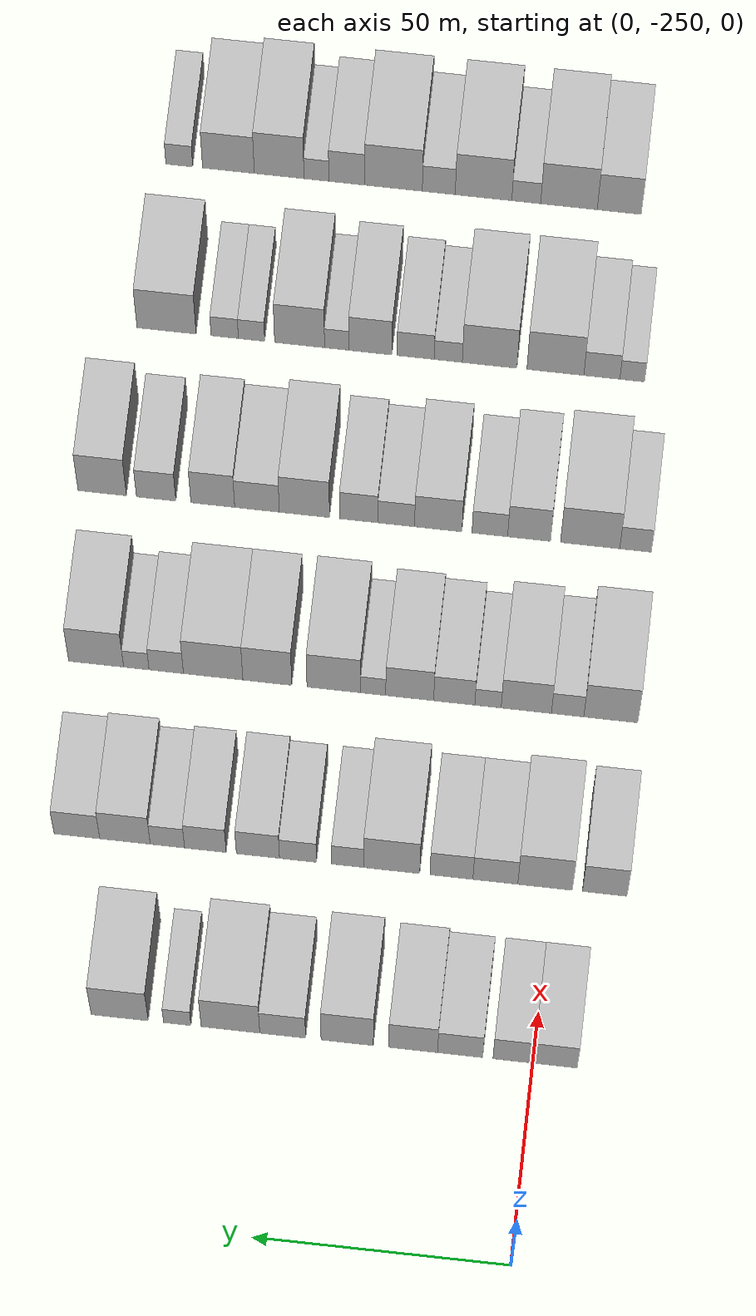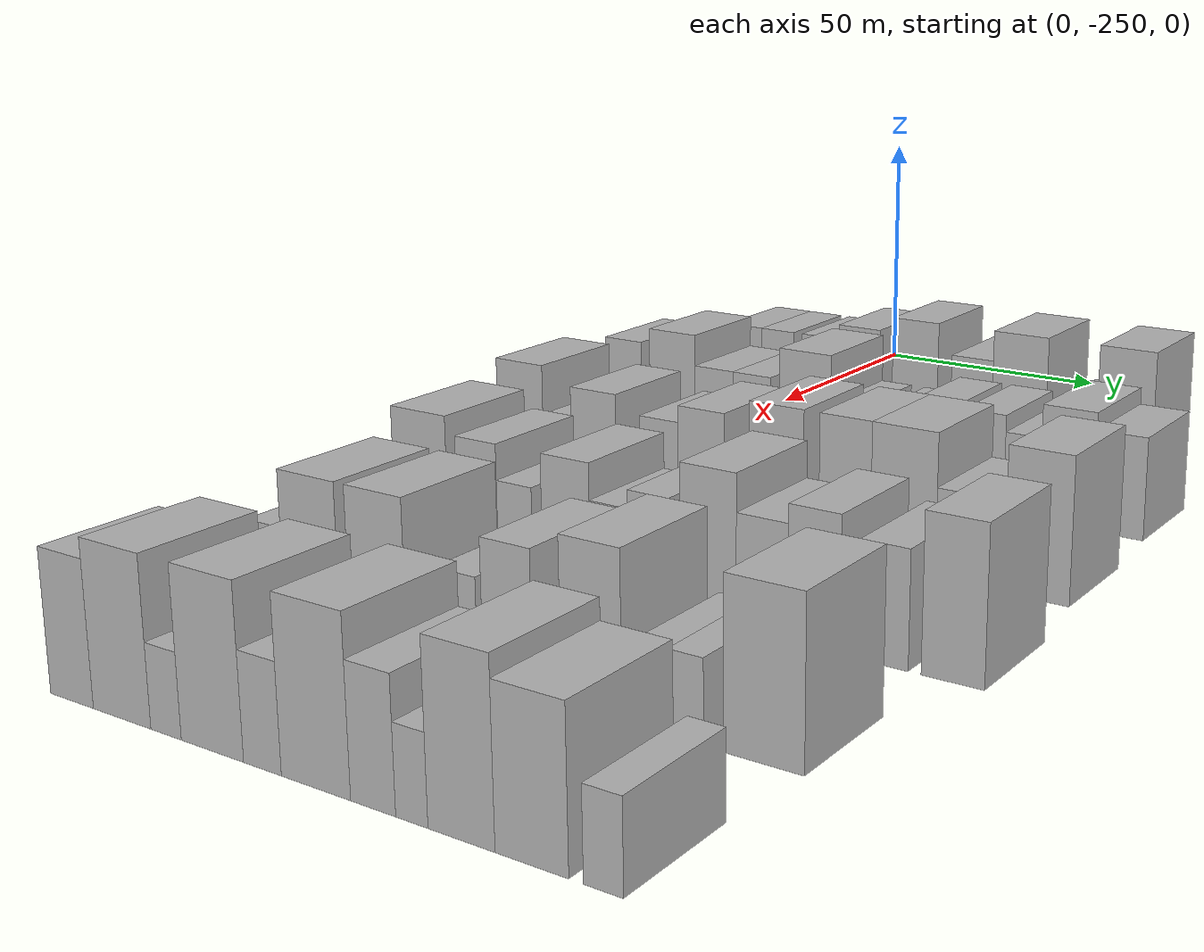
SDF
<sdf version="1.6">
 <world name="default">
  <model name="building_38">
   <static>1</static>
   <pose>50.0000 -254.2759 0 0.000000 0.000000 0.000000</pose>
   <link name="link">
    <pose>0 0 9.00 0 0 0</pose>
    <collision name="collision"><geometry><box><size>20.0000 8.5473 18.0000</size></box></geometry></collision>
    <visual name="visual">
     <cast_shadows>0</cast_shadows>
     <geometry><box><size>20.0000 8.5473 18.0000</size></box></geometry>
     <material>
      <script>
       <uri>model://HANNAS_wall/materials/scripts</uri>
       <uri>model://HANNAS_wall/materials/textures</uri>
       <name>vrc/HANNAS_wall</name>
      </script>
     </material>
    </visual>
   </link>
  </model>
  <model name="building_39">
   <static>1</static>
   <pose>50.0000 -246.0966 0 0.000000 0.000000 0.000000</pose>
   <link name="link">
    <pose>0 0 9.00 0 0 0</pose>
    <collision name="collision"><geometry><box><size>20.0000 7.8114 18.0000</size></box></geometry></collision>
    <visual name="visual">
     <cast_shadows>0</cast_shadows>
     <geometry><box><size>20.0000 7.8114 18.0000</size></box></geometry>
     <material>
      <script>
       <uri>model://HANNAS_wall/materials/scripts</uri>
       <uri>model://HANNAS_wall/materials/textures</uri>
       <name>vrc/HANNAS_wall</name>
      </script>
     </material>
    </visual>
   </link>
  </model>
  <model name="building_40">
   <static>1</static>
   <pose>50.0000 -235.7969 0 0.000000 0.000000 0.000000</pose>
   <link name="link">
    <pose>0 0 9.00 0 0 0</pose>
    <collision name="collision"><geometry><box><size>20.0000 8.7880 18.0000</size></box></geometry></collision>
    <visual name="visual">
     <cast_shadows>0</cast_shadows>
     <geometry><box><size>20.0000 8.7880 18.0000</size></box></geometry>
     <material>
      <script>
       <uri>model://HANNAS_wall/materials/scripts</uri>
       <uri>model://HANNAS_wall/materials/textures</uri>
       <name>vrc/HANNAS_wall</name>
      </script>
     </material>
    </visual>
   </link>
  </model>
  <model name="building_41">
   <static>1</static>
   <pose>50.0000 -226.6547 0 0.000000 0.000000 0.000000</pose>
   <link name="link">
    <pose>0 0 10.50 0 0 0</pose>
    <collision name="collision"><geometry><box><size>20.0000 9.4963 21.0000</size></box></geometry></collision>
    <visual name="visual">
     <cast_shadows>0</cast_shadows>
     <geometry><box><size>20.0000 9.4963 21.0000</size></box></geometry>
     <material>
      <script>
       <uri>model://HANNAS_wall/materials/scripts</uri>
       <uri>model://HANNAS_wall/materials/textures</uri>
       <name>vrc/HANNAS_wall</name>
      </script>
     </material>
    </visual>
   </link>
  </model>
  <model name="building_42">
   <static>1</static>
   <pose>50.0000 -213.8169 0 0.000000 0.000000 0.000000</pose>
   <link name="link">
    <pose>0 0 12.00 0 0 0</pose>
    <collision name="collision"><geometry><box><size>20.0000 10.1794 24.0000</size></box></geometry></collision>
    <visual name="visual">
     <cast_shadows>0</cast_shadows>
     <geometry><box><size>20.0000 10.1794 24.0000</size></box></geometry>
     <material>
      <script>
       <uri>model://HANNAS_wall/materials/scripts</uri>
       <uri>model://HANNAS_wall/materials/textures</uri>
       <name>vrc/HANNAS_wall</name>
      </script>
     </material>
    </visual>
   </link>
  </model>
  <model name="building_43">
   <static>1</static>
   <pose>50.0000 -201.2609 0 0.000000 0.000000 0.000000</pose>
   <link name="link">
    <pose>0 0 9.00 0 0 0</pose>
    <collision name="collision"><geometry><box><size>20.0000 8.9326 18.0000</size></box></geometry></collision>
    <visual name="visual">
     <cast_shadows>0</cast_shadows>
     <geometry><box><size>20.0000 8.9326 18.0000</size></box></geometry>
     <material>
      <script>
       <uri>model://HANNAS_wall/materials/scripts</uri>
       <uri>model://HANNAS_wall/materials/textures</uri>
       <name>vrc/HANNAS_wall</name>
      </script>
     </material>
    </visual>
   </link>
  </model>
  <model name="building_44">
   <static>1</static>
   <pose>50.0000 -191.0896 0 0.000000 0.000000 0.000000</pose>
   <link name="link">
    <pose>0 0 12.00 0 0 0</pose>
    <collision name="collision"><geometry><box><size>20.0000 11.4100 24.0000</size></box></geometry></collision>
    <visual name="visual">
     <cast_shadows>0</cast_shadows>
     <geometry><box><size>20.0000 11.4100 24.0000</size></box></geometry>
     <material>
      <script>
       <uri>model://HANNAS_wall/materials/scripts</uri>
       <uri>model://HANNAS_wall/materials/textures</uri>
       <name>vrc/HANNAS_wall</name>
      </script>
     </material>
    </visual>
   </link>
  </model>
  <model name="building_45">
   <static>1</static>
   <pose>50.0000 -180.7207 0 0.000000 0.000000 0.000000</pose>
   <link name="link">
    <pose>0 0 6.00 0 0 0</pose>
    <collision name="collision"><geometry><box><size>20.0000 5.3279 12.0000</size></box></geometry></collision>
    <visual name="visual">
     <cast_shadows>0</cast_shadows>
     <geometry><box><size>20.0000 5.3279 12.0000</size></box></geometry>
     <material>
      <script>
       <uri>model://HANNAS_wall/materials/scripts</uri>
       <uri>model://HANNAS_wall/materials/textures</uri>
       <name>vrc/HANNAS_wall</name>
      </script>
     </material>
    </visual>
   </link>
  </model>
  <model name="building_46">
   <static>1</static>
   <pose>50.0000 -169.4940 0 0.000000 0.000000 0.000000</pose>
   <link name="link">
    <pose>0 0 12.00 0 0 0</pose>
    <collision name="collision"><geometry><box><size>20.0000 11.1255 24.0000</size></box></geometry></collision>
    <visual name="visual">
     <cast_shadows>0</cast_shadows>
     <geometry><box><size>20.0000 11.1255 24.0000</size></box></geometry>
     <material>
      <script>
       <uri>model://HANNAS_wall/materials/scripts</uri>
       <uri>model://HANNAS_wall/materials/textures</uri>
       <name>vrc/HANNAS_wall</name>
      </script>
     </material>
    </visual>
   </link>
  </model>
  <model name="building_152">
   <static>1</static>
   <pose>85.0000 -260.3451 0 0.000000 0.000000 0.000000</pose>
   <link name="link">
    <pose>0 0 10.50 0 0 0</pose>
    <collision name="collision"><geometry><box><size>20.0000 8.6843 21.0000</size></box></geometry></collision>
    <visual name="visual">
     <cast_shadows>0</cast_shadows>
     <geometry><box><size>20.0000 8.6843 21.0000</size></box></geometry>
     <material>
      <script>
       <uri>model://HANNAS_wall/materials/scripts</uri>
       <uri>model://HANNAS_wall/materials/textures</uri>
       <name>vrc/HANNAS_wall</name>
      </script>
     </material>
    </visual>
   </link>
  </model>
  <model name="building_153">
   <static>1</static>
   <pose>85.0000 -248.6635 0 0.000000 0.000000 0.000000</pose>
   <link name="link">
    <pose>0 0 12.00 0 0 0</pose>
    <collision name="collision"><geometry><box><size>20.0000 10.6789 24.0000</size></box></geometry></collision>
    <visual name="visual">
     <cast_shadows>0</cast_shadows>
     <geometry><box><size>20.0000 10.6789 24.0000</size></box></geometry>
     <material>
      <script>
       <uri>model://HANNAS_wall/materials/scripts</uri>
       <uri>model://HANNAS_wall/materials/textures</uri>
       <name>vrc/HANNAS_wall</name>
      </script>
     </material>
    </visual>
   </link>
  </model>
  <model name="building_154">
   <static>1</static>
   <pose>85.0000 -238.9257 0 0.000000 0.000000 0.000000</pose>
   <link name="link">
    <pose>0 0 9.00 0 0 0</pose>
    <collision name="collision"><geometry><box><size>20.0000 8.7967 18.0000</size></box></geometry></collision>
    <visual name="visual">
     <cast_shadows>0</cast_shadows>
     <geometry><box><size>20.0000 8.7967 18.0000</size></box></geometry>
     <material>
      <script>
       <uri>model://HANNAS_wall/materials/scripts</uri>
       <uri>model://HANNAS_wall/materials/textures</uri>
       <name>vrc/HANNAS_wall</name>
      </script>
     </material>
    </visual>
   </link>
  </model>
  <model name="building_155">
   <static>1</static>
   <pose>85.0000 -230.3181 0 0.000000 0.000000 0.000000</pose>
   <link name="link">
    <pose>0 0 9.00 0 0 0</pose>
    <collision name="collision"><geometry><box><size>20.0000 8.4185 18.0000</size></box></geometry></collision>
    <visual name="visual">
     <cast_shadows>0</cast_shadows>
     <geometry><box><size>20.0000 8.4185 18.0000</size></box></geometry>
     <material>
      <script>
       <uri>model://HANNAS_wall/materials/scripts</uri>
       <uri>model://HANNAS_wall/materials/textures</uri>
       <name>vrc/HANNAS_wall</name>
      </script>
     </material>
    </visual>
   </link>
  </model>
  <model name="building_156">
   <static>1</static>
   <pose>85.0000 -218.6136 0 0.000000 0.000000 0.000000</pose>
   <link name="link">
    <pose>0 0 12.00 0 0 0</pose>
    <collision name="collision"><geometry><box><size>20.0000 10.9906 24.0000</size></box></geometry></collision>
    <visual name="visual">
     <cast_shadows>0</cast_shadows>
     <geometry><box><size>20.0000 10.9906 24.0000</size></box></geometry>
     <material>
      <script>
       <uri>model://HANNAS_wall/materials/scripts</uri>
       <uri>model://HANNAS_wall/materials/textures</uri>
       <name>vrc/HANNAS_wall</name>
      </script>
     </material>
    </visual>
   </link>
  </model>
  <model name="building_157">
   <static>1</static>
   <pose>85.0000 -209.9815 0 0.000000 0.000000 0.000000</pose>
   <link name="link">
    <pose>0 0 7.50 0 0 0</pose>
    <collision name="collision"><geometry><box><size>20.0000 6.2735 15.0000</size></box></geometry></collision>
    <visual name="visual">
     <cast_shadows>0</cast_shadows>
     <geometry><box><size>20.0000 6.2735 15.0000</size></box></geometry>
     <material>
      <script>
       <uri>model://HANNAS_wall/materials/scripts</uri>
       <uri>model://HANNAS_wall/materials/textures</uri>
       <name>vrc/HANNAS_wall</name>
      </script>
     </material>
    </visual>
   </link>
  </model>
  <model name="building_158">
   <static>1</static>
   <pose>85.0000 -200.2164 0 0.000000 0.000000 0.000000</pose>
   <link name="link">
    <pose>0 0 7.50 0 0 0</pose>
    <collision name="collision"><geometry><box><size>20.0000 7.2566 15.0000</size></box></geometry></collision>
    <visual name="visual">
     <cast_shadows>0</cast_shadows>
     <geometry><box><size>20.0000 7.2566 15.0000</size></box></geometry>
     <material>
      <script>
       <uri>model://HANNAS_wall/materials/scripts</uri>
       <uri>model://HANNAS_wall/materials/textures</uri>
       <name>vrc/HANNAS_wall</name>
      </script>
     </material>
    </visual>
   </link>
  </model>
  <model name="building_159">
   <static>1</static>
   <pose>85.0000 -192.3553 0 0.000000 0.000000 0.000000</pose>
   <link name="link">
    <pose>0 0 9.00 0 0 0</pose>
    <collision name="collision"><geometry><box><size>20.0000 8.4656 18.0000</size></box></geometry></collision>
    <visual name="visual">
     <cast_shadows>0</cast_shadows>
     <geometry><box><size>20.0000 8.4656 18.0000</size></box></geometry>
     <material>
      <script>
       <uri>model://HANNAS_wall/materials/scripts</uri>
       <uri>model://HANNAS_wall/materials/textures</uri>
       <name>vrc/HANNAS_wall</name>
      </script>
     </material>
    </visual>
   </link>
  </model>
  <model name="building_160">
   <static>1</static>
   <pose>85.0000 -182.0341 0 0.000000 0.000000 0.000000</pose>
   <link name="link">
    <pose>0 0 9.00 0 0 0</pose>
    <collision name="collision"><geometry><box><size>20.0000 8.1768 18.0000</size></box></geometry></collision>
    <visual name="visual">
     <cast_shadows>0</cast_shadows>
     <geometry><box><size>20.0000 8.1768 18.0000</size></box></geometry>
     <material>
      <script>
       <uri>model://HANNAS_wall/materials/scripts</uri>
       <uri>model://HANNAS_wall/materials/textures</uri>
       <name>vrc/HANNAS_wall</name>
      </script>
     </material>
    </visual>
   </link>
  </model>
  <model name="building_161">
   <static>1</static>
   <pose>85.0000 -174.5738 0 0.000000 0.000000 0.000000</pose>
   <link name="link">
    <pose>0 0 7.50 0 0 0</pose>
    <collision name="collision"><geometry><box><size>20.0000 6.7437 15.0000</size></box></geometry></collision>
    <visual name="visual">
     <cast_shadows>0</cast_shadows>
     <geometry><box><size>20.0000 6.7437 15.0000</size></box></geometry>
     <material>
      <script>
       <uri>model://HANNAS_wall/materials/scripts</uri>
       <uri>model://HANNAS_wall/materials/textures</uri>
       <name>vrc/HANNAS_wall</name>
      </script>
     </material>
    </visual>
   </link>
  </model>
  <model name="building_162">
   <static>1</static>
   <pose>85.0000 -166.2309 0 0.000000 0.000000 0.000000</pose>
   <link name="link">
    <pose>0 0 10.50 0 0 0</pose>
    <collision name="collision"><geometry><box><size>20.0000 9.9423 21.0000</size></box></geometry></collision>
    <visual name="visual">
     <cast_shadows>0</cast_shadows>
     <geometry><box><size>20.0000 9.9423 21.0000</size></box></geometry>
     <material>
      <script>
       <uri>model://HANNAS_wall/materials/scripts</uri>
       <uri>model://HANNAS_wall/materials/textures</uri>
       <name>vrc/HANNAS_wall</name>
      </script>
     </material>
    </visual>
   </link>
  </model>
  <model name="building_163">
   <static>1</static>
   <pose>85.0000 -156.7769 0 0.000000 0.000000 0.000000</pose>
   <link name="link">
    <pose>0 0 9.00 0 0 0</pose>
    <collision name="collision"><geometry><box><size>20.0000 8.9656 18.0000</size></box></geometry></collision>
    <visual name="visual">
     <cast_shadows>0</cast_shadows>
     <geometry><box><size>20.0000 8.9656 18.0000</size></box></geometry>
     <material>
      <script>
       <uri>model://HANNAS_wall/materials/scripts</uri>
       <uri>model://HANNAS_wall/materials/textures</uri>
       <name>vrc/HANNAS_wall</name>
      </script>
     </material>
    </visual>
   </link>
  </model>
  <model name="building_283">
   <static>1</static>
   <pose>120.0000 -257.9569 0 0.000000 0.000000 0.000000</pose>
   <link name="link">
    <pose>0 0 12.00 0 0 0</pose>
    <collision name="collision"><geometry><box><size>20.0000 10.6212 24.0000</size></box></geometry></collision>
    <visual name="visual">
     <cast_shadows>0</cast_shadows>
     <geometry><box><size>20.0000 10.6212 24.0000</size></box></geometry>
     <material>
      <script>
       <uri>model://HANNAS_wall/materials/scripts</uri>
       <uri>model://HANNAS_wall/materials/textures</uri>
       <name>vrc/HANNAS_wall</name>
      </script>
     </material>
    </visual>
   </link>
  </model>
  <model name="building_284">
   <static>1</static>
   <pose>120.0000 -249.4541 0 0.000000 0.000000 0.000000</pose>
   <link name="link">
    <pose>0 0 7.50 0 0 0</pose>
    <collision name="collision"><geometry><box><size>20.0000 6.3844 15.0000</size></box></geometry></collision>
    <visual name="visual">
     <cast_shadows>0</cast_shadows>
     <geometry><box><size>20.0000 6.3844 15.0000</size></box></geometry>
     <material>
      <script>
       <uri>model://HANNAS_wall/materials/scripts</uri>
       <uri>model://HANNAS_wall/materials/textures</uri>
       <name>vrc/HANNAS_wall</name>
      </script>
     </material>
    </visual>
   </link>
  </model>
  <model name="building_285">
   <static>1</static>
   <pose>120.0000 -241.2996 0 0.000000 0.000000 0.000000</pose>
   <link name="link">
    <pose>0 0 10.50 0 0 0</pose>
    <collision name="collision"><geometry><box><size>20.0000 9.9246 21.0000</size></box></geometry></collision>
    <visual name="visual">
     <cast_shadows>0</cast_shadows>
     <geometry><box><size>20.0000 9.9246 21.0000</size></box></geometry>
     <material>
      <script>
       <uri>model://HANNAS_wall/materials/scripts</uri>
       <uri>model://HANNAS_wall/materials/textures</uri>
       <name>vrc/HANNAS_wall</name>
      </script>
     </material>
    </visual>
   </link>
  </model>
  <model name="building_286">
   <static>1</static>
   <pose>120.0000 -233.7418 0 0.000000 0.000000 0.000000</pose>
   <link name="link">
    <pose>0 0 6.00 0 0 0</pose>
    <collision name="collision"><geometry><box><size>20.0000 5.1909 12.0000</size></box></geometry></collision>
    <visual name="visual">
     <cast_shadows>0</cast_shadows>
     <geometry><box><size>20.0000 5.1909 12.0000</size></box></geometry>
     <material>
      <script>
       <uri>model://HANNAS_wall/materials/scripts</uri>
       <uri>model://HANNAS_wall/materials/textures</uri>
       <name>vrc/HANNAS_wall</name>
      </script>
     </material>
    </visual>
   </link>
  </model>
  <model name="building_287">
   <static>1</static>
   <pose>120.0000 -227.0814 0 0.000000 0.000000 0.000000</pose>
   <link name="link">
    <pose>0 0 9.00 0 0 0</pose>
    <collision name="collision"><geometry><box><size>20.0000 8.1298 18.0000</size></box></geometry></collision>
    <visual name="visual">
     <cast_shadows>0</cast_shadows>
     <geometry><box><size>20.0000 8.1298 18.0000</size></box></geometry>
     <material>
      <script>
       <uri>model://HANNAS_wall/materials/scripts</uri>
       <uri>model://HANNAS_wall/materials/textures</uri>
       <name>vrc/HANNAS_wall</name>
      </script>
     </material>
    </visual>
   </link>
  </model>
  <model name="building_288">
   <static>1</static>
   <pose>120.0000 -218.2768 0 0.000000 0.000000 0.000000</pose>
   <link name="link">
    <pose>0 0 10.50 0 0 0</pose>
    <collision name="collision"><geometry><box><size>20.0000 9.4794 21.0000</size></box></geometry></collision>
    <visual name="visual">
     <cast_shadows>0</cast_shadows>
     <geometry><box><size>20.0000 9.4794 21.0000</size></box></geometry>
     <material>
      <script>
       <uri>model://HANNAS_wall/materials/scripts</uri>
       <uri>model://HANNAS_wall/materials/textures</uri>
       <name>vrc/HANNAS_wall</name>
      </script>
     </material>
    </visual>
   </link>
  </model>
  <model name="building_289">
   <static>1</static>
   <pose>120.0000 -211.0689 0 0.000000 0.000000 0.000000</pose>
   <link name="link">
    <pose>0 0 6.00 0 0 0</pose>
    <collision name="collision"><geometry><box><size>20.0000 4.9363 12.0000</size></box></geometry></collision>
    <visual name="visual">
     <cast_shadows>0</cast_shadows>
     <geometry><box><size>20.0000 4.9363 12.0000</size></box></geometry>
     <material>
      <script>
       <uri>model://HANNAS_wall/materials/scripts</uri>
       <uri>model://HANNAS_wall/materials/textures</uri>
       <name>vrc/HANNAS_wall</name>
      </script>
     </material>
    </visual>
   </link>
  </model>
  <model name="building_290">
   <static>1</static>
   <pose>120.0000 -203.2916 0 0.000000 0.000000 0.000000</pose>
   <link name="link">
    <pose>0 0 12.00 0 0 0</pose>
    <collision name="collision"><geometry><box><size>20.0000 10.6183 24.0000</size></box></geometry></collision>
    <visual name="visual">
     <cast_shadows>0</cast_shadows>
     <geometry><box><size>20.0000 10.6183 24.0000</size></box></geometry>
     <material>
      <script>
       <uri>model://HANNAS_wall/materials/scripts</uri>
       <uri>model://HANNAS_wall/materials/textures</uri>
       <name>vrc/HANNAS_wall</name>
      </script>
     </material>
    </visual>
   </link>
  </model>
  <model name="building_291">
   <static>1</static>
   <pose>120.0000 -190.1399 0 0.000000 0.000000 0.000000</pose>
   <link name="link">
    <pose>0 0 12.00 0 0 0</pose>
    <collision name="collision"><geometry><box><size>20.0000 9.6853 24.0000</size></box></geometry></collision>
    <visual name="visual">
     <cast_shadows>0</cast_shadows>
     <geometry><box><size>20.0000 9.6853 24.0000</size></box></geometry>
     <material>
      <script>
       <uri>model://HANNAS_wall/materials/scripts</uri>
       <uri>model://HANNAS_wall/materials/textures</uri>
       <name>vrc/HANNAS_wall</name>
      </script>
     </material>
    </visual>
   </link>
  </model>
  <model name="building_292">
   <static>1</static>
   <pose>120.0000 -179.4175 0 0.000000 0.000000 0.000000</pose>
   <link name="link">
    <pose>0 0 12.00 0 0 0</pose>
    <collision name="collision"><geometry><box><size>20.0000 11.7595 24.0000</size></box></geometry></collision>
    <visual name="visual">
     <cast_shadows>0</cast_shadows>
     <geometry><box><size>20.0000 11.7595 24.0000</size></box></geometry>
     <material>
      <script>
       <uri>model://HANNAS_wall/materials/scripts</uri>
       <uri>model://HANNAS_wall/materials/textures</uri>
       <name>vrc/HANNAS_wall</name>
      </script>
     </material>
    </visual>
   </link>
  </model>
  <model name="building_293">
   <static>1</static>
   <pose>120.0000 -170.1324 0 0.000000 0.000000 0.000000</pose>
   <link name="link">
    <pose>0 0 7.50 0 0 0</pose>
    <collision name="collision"><geometry><box><size>20.0000 6.8106 15.0000</size></box></geometry></collision>
    <visual name="visual">
     <cast_shadows>0</cast_shadows>
     <geometry><box><size>20.0000 6.8106 15.0000</size></box></geometry>
     <material>
      <script>
       <uri>model://HANNAS_wall/materials/scripts</uri>
       <uri>model://HANNAS_wall/materials/textures</uri>
       <name>vrc/HANNAS_wall</name>
      </script>
     </material>
    </visual>
   </link>
  </model>
  <model name="building_294">
   <static>1</static>
   <pose>120.0000 -164.2100 0 0.000000 0.000000 0.000000</pose>
   <link name="link">
    <pose>0 0 6.00 0 0 0</pose>
    <collision name="collision"><geometry><box><size>20.0000 5.0341 12.0000</size></box></geometry></collision>
    <visual name="visual">
     <cast_shadows>0</cast_shadows>
     <geometry><box><size>20.0000 5.0341 12.0000</size></box></geometry>
     <material>
      <script>
       <uri>model://HANNAS_wall/materials/scripts</uri>
       <uri>model://HANNAS_wall/materials/textures</uri>
       <name>vrc/HANNAS_wall</name>
      </script>
     </material>
    </visual>
   </link>
  </model>
  <model name="building_295">
   <static>1</static>
   <pose>120.0000 -156.2588 0 0.000000 0.000000 0.000000</pose>
   <link name="link">
    <pose>0 0 12.00 0 0 0</pose>
    <collision name="collision"><geometry><box><size>20.0000 10.8684 24.0000</size></box></geometry></collision>
    <visual name="visual">
     <cast_shadows>0</cast_shadows>
     <geometry><box><size>20.0000 10.8684 24.0000</size></box></geometry>
     <material>
      <script>
       <uri>model://HANNAS_wall/materials/scripts</uri>
       <uri>model://HANNAS_wall/materials/textures</uri>
       <name>vrc/HANNAS_wall</name>
      </script>
     </material>
    </visual>
   </link>
  </model>
  <model name="building_414">
   <static>1</static>
   <pose>155.0000 -259.3065 0 0.000000 0.000000 0.000000</pose>
   <link name="link">
    <pose>0 0 7.50 0 0 0</pose>
    <collision name="collision"><geometry><box><size>20.0000 6.2713 15.0000</size></box></geometry></collision>
    <visual name="visual">
     <cast_shadows>0</cast_shadows>
     <geometry><box><size>20.0000 6.2713 15.0000</size></box></geometry>
     <material>
      <script>
       <uri>model://HANNAS_wall/materials/scripts</uri>
       <uri>model://HANNAS_wall/materials/textures</uri>
       <name>vrc/HANNAS_wall</name>
      </script>
     </material>
    </visual>
   </link>
  </model>
  <model name="building_415">
   <static>1</static>
   <pose>155.0000 -250.2987 0 0.000000 0.000000 0.000000</pose>
   <link name="link">
    <pose>0 0 12.00 0 0 0</pose>
    <collision name="collision"><geometry><box><size>20.0000 11.7444 24.0000</size></box></geometry></collision>
    <visual name="visual">
     <cast_shadows>0</cast_shadows>
     <geometry><box><size>20.0000 11.7444 24.0000</size></box></geometry>
     <material>
      <script>
       <uri>model://HANNAS_wall/materials/scripts</uri>
       <uri>model://HANNAS_wall/materials/textures</uri>
       <name>vrc/HANNAS_wall</name>
      </script>
     </material>
    </visual>
   </link>
  </model>
  <model name="building_416">
   <static>1</static>
   <pose>155.0000 -238.1660 0 0.000000 0.000000 0.000000</pose>
   <link name="link">
    <pose>0 0 10.50 0 0 0</pose>
    <collision name="collision"><geometry><box><size>20.0000 8.5210 21.0000</size></box></geometry></collision>
    <visual name="visual">
     <cast_shadows>0</cast_shadows>
     <geometry><box><size>20.0000 8.5210 21.0000</size></box></geometry>
     <material>
      <script>
       <uri>model://HANNAS_wall/materials/scripts</uri>
       <uri>model://HANNAS_wall/materials/textures</uri>
       <name>vrc/HANNAS_wall</name>
      </script>
     </material>
    </visual>
   </link>
  </model>
  <model name="building_417">
   <static>1</static>
   <pose>155.0000 -230.3635 0 0.000000 0.000000 0.000000</pose>
   <link name="link">
    <pose>0 0 7.50 0 0 0</pose>
    <collision name="collision"><geometry><box><size>20.0000 7.0841 15.0000</size></box></geometry></collision>
    <visual name="visual">
     <cast_shadows>0</cast_shadows>
     <geometry><box><size>20.0000 7.0841 15.0000</size></box></geometry>
     <material>
      <script>
       <uri>model://HANNAS_wall/materials/scripts</uri>
       <uri>model://HANNAS_wall/materials/textures</uri>
       <name>vrc/HANNAS_wall</name>
      </script>
     </material>
    </visual>
   </link>
  </model>
  <model name="building_418">
   <static>1</static>
   <pose>155.0000 -220.1053 0 0.000000 0.000000 0.000000</pose>
   <link name="link">
    <pose>0 0 10.50 0 0 0</pose>
    <collision name="collision"><geometry><box><size>20.0000 9.4321 21.0000</size></box></geometry></collision>
    <visual name="visual">
     <cast_shadows>0</cast_shadows>
     <geometry><box><size>20.0000 9.4321 21.0000</size></box></geometry>
     <material>
      <script>
       <uri>model://HANNAS_wall/materials/scripts</uri>
       <uri>model://HANNAS_wall/materials/textures</uri>
       <name>vrc/HANNAS_wall</name>
      </script>
     </material>
    </visual>
   </link>
  </model>
  <model name="building_419">
   <static>1</static>
   <pose>155.0000 -211.7390 0 0.000000 0.000000 0.000000</pose>
   <link name="link">
    <pose>0 0 7.50 0 0 0</pose>
    <collision name="collision"><geometry><box><size>20.0000 7.3005 15.0000</size></box></geometry></collision>
    <visual name="visual">
     <cast_shadows>0</cast_shadows>
     <geometry><box><size>20.0000 7.3005 15.0000</size></box></geometry>
     <material>
      <script>
       <uri>model://HANNAS_wall/materials/scripts</uri>
       <uri>model://HANNAS_wall/materials/textures</uri>
       <name>vrc/HANNAS_wall</name>
      </script>
     </material>
    </visual>
   </link>
  </model>
  <model name="building_420">
   <static>1</static>
   <pose>155.0000 -204.2798 0 0.000000 0.000000 0.000000</pose>
   <link name="link">
    <pose>0 0 9.00 0 0 0</pose>
    <collision name="collision"><geometry><box><size>20.0000 7.6180 18.0000</size></box></geometry></collision>
    <visual name="visual">
     <cast_shadows>0</cast_shadows>
     <geometry><box><size>20.0000 7.6180 18.0000</size></box></geometry>
     <material>
      <script>
       <uri>model://HANNAS_wall/materials/scripts</uri>
       <uri>model://HANNAS_wall/materials/textures</uri>
       <name>vrc/HANNAS_wall</name>
      </script>
     </material>
    </visual>
   </link>
  </model>
  <model name="building_421">
   <static>1</static>
   <pose>155.0000 -193.4702 0 0.000000 0.000000 0.000000</pose>
   <link name="link">
    <pose>0 0 12.00 0 0 0</pose>
    <collision name="collision"><geometry><box><size>20.0000 10.0012 24.0000</size></box></geometry></collision>
    <visual name="visual">
     <cast_shadows>0</cast_shadows>
     <geometry><box><size>20.0000 10.0012 24.0000</size></box></geometry>
     <material>
      <script>
       <uri>model://HANNAS_wall/materials/scripts</uri>
       <uri>model://HANNAS_wall/materials/textures</uri>
       <name>vrc/HANNAS_wall</name>
      </script>
     </material>
    </visual>
   </link>
  </model>
  <model name="building_422">
   <static>1</static>
   <pose>155.0000 -184.0236 0 0.000000 0.000000 0.000000</pose>
   <link name="link">
    <pose>0 0 9.00 0 0 0</pose>
    <collision name="collision"><geometry><box><size>20.0000 8.8919 18.0000</size></box></geometry></collision>
    <visual name="visual">
     <cast_shadows>0</cast_shadows>
     <geometry><box><size>20.0000 8.8919 18.0000</size></box></geometry>
     <material>
      <script>
       <uri>model://HANNAS_wall/materials/scripts</uri>
       <uri>model://HANNAS_wall/materials/textures</uri>
       <name>vrc/HANNAS_wall</name>
      </script>
     </material>
    </visual>
   </link>
  </model>
  <model name="building_423">
   <static>1</static>
   <pose>155.0000 -175.2117 0 0.000000 0.000000 0.000000</pose>
   <link name="link">
    <pose>0 0 10.50 0 0 0</pose>
    <collision name="collision"><geometry><box><size>20.0000 8.7320 21.0000</size></box></geometry></collision>
    <visual name="visual">
     <cast_shadows>0</cast_shadows>
     <geometry><box><size>20.0000 8.7320 21.0000</size></box></geometry>
     <material>
      <script>
       <uri>model://HANNAS_wall/materials/scripts</uri>
       <uri>model://HANNAS_wall/materials/textures</uri>
       <name>vrc/HANNAS_wall</name>
      </script>
     </material>
    </visual>
   </link>
  </model>
  <model name="building_424">
   <static>1</static>
   <pose>155.0000 -163.9189 0 0.000000 0.000000 0.000000</pose>
   <link name="link">
    <pose>0 0 9.00 0 0 0</pose>
    <collision name="collision"><geometry><box><size>20.0000 7.8535 18.0000</size></box></geometry></collision>
    <visual name="visual">
     <cast_shadows>0</cast_shadows>
     <geometry><box><size>20.0000 7.8535 18.0000</size></box></geometry>
     <material>
      <script>
       <uri>model://HANNAS_wall/materials/scripts</uri>
       <uri>model://HANNAS_wall/materials/textures</uri>
       <name>vrc/HANNAS_wall</name>
      </script>
     </material>
    </visual>
   </link>
  </model>
  <model name="building_425">
   <static>1</static>
   <pose>155.0000 -153.1665 0 0.000000 0.000000 0.000000</pose>
   <link name="link">
    <pose>0 0 12.00 0 0 0</pose>
    <collision name="collision"><geometry><box><size>20.0000 9.6513 24.0000</size></box></geometry></collision>
    <visual name="visual">
     <cast_shadows>0</cast_shadows>
     <geometry><box><size>20.0000 9.6513 24.0000</size></box></geometry>
     <material>
      <script>
       <uri>model://HANNAS_wall/materials/scripts</uri>
       <uri>model://HANNAS_wall/materials/textures</uri>
       <name>vrc/HANNAS_wall</name>
      </script>
     </material>
    </visual>
   </link>
  </model>
  <model name="building_547">
   <static>1</static>
   <pose>190.0000 -255.1318 0 0.000000 0.000000 0.000000</pose>
   <link name="link">
    <pose>0 0 6.00 0 0 0</pose>
    <collision name="collision"><geometry><box><size>20.0000 4.9309 12.0000</size></box></geometry></collision>
    <visual name="visual">
     <cast_shadows>0</cast_shadows>
     <geometry><box><size>20.0000 4.9309 12.0000</size></box></geometry>
     <material>
      <script>
       <uri>model://HANNAS_wall/materials/scripts</uri>
       <uri>model://HANNAS_wall/materials/textures</uri>
       <name>vrc/HANNAS_wall</name>
      </script>
     </material>
    </visual>
   </link>
  </model>
  <model name="building_548">
   <static>1</static>
   <pose>190.0000 -249.0588 0 0.000000 0.000000 0.000000</pose>
   <link name="link">
    <pose>0 0 7.50 0 0 0</pose>
    <collision name="collision"><geometry><box><size>20.0000 7.2150 15.0000</size></box></geometry></collision>
    <visual name="visual">
     <cast_shadows>0</cast_shadows>
     <geometry><box><size>20.0000 7.2150 15.0000</size></box></geometry>
     <material>
      <script>
       <uri>model://HANNAS_wall/materials/scripts</uri>
       <uri>model://HANNAS_wall/materials/textures</uri>
       <name>vrc/HANNAS_wall</name>
      </script>
     </material>
    </visual>
   </link>
  </model>
  <model name="building_549">
   <static>1</static>
   <pose>190.0000 -239.7594 0 0.000000 0.000000 0.000000</pose>
   <link name="link">
    <pose>0 0 12.00 0 0 0</pose>
    <collision name="collision"><geometry><box><size>20.0000 11.3837 24.0000</size></box></geometry></collision>
    <visual name="visual">
     <cast_shadows>0</cast_shadows>
     <geometry><box><size>20.0000 11.3837 24.0000</size></box></geometry>
     <material>
      <script>
       <uri>model://HANNAS_wall/materials/scripts</uri>
       <uri>model://HANNAS_wall/materials/textures</uri>
       <name>vrc/HANNAS_wall</name>
      </script>
     </material>
    </visual>
   </link>
  </model>
  <model name="building_550">
   <static>1</static>
   <pose>190.0000 -226.5901 0 0.000000 0.000000 0.000000</pose>
   <link name="link">
    <pose>0 0 12.00 0 0 0</pose>
    <collision name="collision"><geometry><box><size>20.0000 10.9548 24.0000</size></box></geometry></collision>
    <visual name="visual">
     <cast_shadows>0</cast_shadows>
     <geometry><box><size>20.0000 10.9548 24.0000</size></box></geometry>
     <material>
      <script>
       <uri>model://HANNAS_wall/materials/scripts</uri>
       <uri>model://HANNAS_wall/materials/textures</uri>
       <name>vrc/HANNAS_wall</name>
      </script>
     </material>
    </visual>
   </link>
  </model>
  <model name="building_551">
   <static>1</static>
   <pose>190.0000 -218.2911 0 0.000000 0.000000 0.000000</pose>
   <link name="link">
    <pose>0 0 6.00 0 0 0</pose>
    <collision name="collision"><geometry><box><size>20.0000 5.6433 12.0000</size></box></geometry></collision>
    <visual name="visual">
     <cast_shadows>0</cast_shadows>
     <geometry><box><size>20.0000 5.6433 12.0000</size></box></geometry>
     <material>
      <script>
       <uri>model://HANNAS_wall/materials/scripts</uri>
       <uri>model://HANNAS_wall/materials/textures</uri>
       <name>vrc/HANNAS_wall</name>
      </script>
     </material>
    </visual>
   </link>
  </model>
  <model name="building_552">
   <static>1</static>
   <pose>190.0000 -211.7467 0 0.000000 0.000000 0.000000</pose>
   <link name="link">
    <pose>0 0 7.50 0 0 0</pose>
    <collision name="collision"><geometry><box><size>20.0000 7.4455 15.0000</size></box></geometry></collision>
    <visual name="visual">
     <cast_shadows>0</cast_shadows>
     <geometry><box><size>20.0000 7.4455 15.0000</size></box></geometry>
     <material>
      <script>
       <uri>model://HANNAS_wall/materials/scripts</uri>
       <uri>model://HANNAS_wall/materials/textures</uri>
       <name>vrc/HANNAS_wall</name>
      </script>
     </material>
    </visual>
   </link>
  </model>
  <model name="building_553">
   <static>1</static>
   <pose>190.0000 -202.6795 0 0.000000 0.000000 0.000000</pose>
   <link name="link">
    <pose>0 0 10.50 0 0 0</pose>
    <collision name="collision"><geometry><box><size>20.0000 8.6890 21.0000</size></box></geometry></collision>
    <visual name="visual">
     <cast_shadows>0</cast_shadows>
     <geometry><box><size>20.0000 8.6890 21.0000</size></box></geometry>
     <material>
      <script>
       <uri>model://HANNAS_wall/materials/scripts</uri>
       <uri>model://HANNAS_wall/materials/textures</uri>
       <name>vrc/HANNAS_wall</name>
      </script>
     </material>
    </visual>
   </link>
  </model>
  <model name="building_554">
   <static>1</static>
   <pose>190.0000 -195.9168 0 0.000000 0.000000 0.000000</pose>
   <link name="link">
    <pose>0 0 6.00 0 0 0</pose>
    <collision name="collision"><geometry><box><size>20.0000 4.8364 12.0000</size></box></geometry></collision>
    <visual name="visual">
     <cast_shadows>0</cast_shadows>
     <geometry><box><size>20.0000 4.8364 12.0000</size></box></geometry>
     <material>
      <script>
       <uri>model://HANNAS_wall/materials/scripts</uri>
       <uri>model://HANNAS_wall/materials/textures</uri>
       <name>vrc/HANNAS_wall</name>
      </script>
     </material>
    </visual>
   </link>
  </model>
  <model name="building_555">
   <static>1</static>
   <pose>190.0000 -188.4969 0 0.000000 0.000000 0.000000</pose>
   <link name="link">
    <pose>0 0 12.00 0 0 0</pose>
    <collision name="collision"><geometry><box><size>20.0000 10.0033 24.0000</size></box></geometry></collision>
    <visual name="visual">
     <cast_shadows>0</cast_shadows>
     <geometry><box><size>20.0000 10.0033 24.0000</size></box></geometry>
     <material>
      <script>
       <uri>model://HANNAS_wall/materials/scripts</uri>
       <uri>model://HANNAS_wall/materials/textures</uri>
       <name>vrc/HANNAS_wall</name>
      </script>
     </material>
    </visual>
   </link>
  </model>
  <model name="building_556">
   <static>1</static>
   <pose>190.0000 -178.8479 0 0.000000 0.000000 0.000000</pose>
   <link name="link">
    <pose>0 0 6.00 0 0 0</pose>
    <collision name="collision"><geometry><box><size>20.0000 5.2946 12.0000</size></box></geometry></collision>
    <visual name="visual">
     <cast_shadows>0</cast_shadows>
     <geometry><box><size>20.0000 5.2946 12.0000</size></box></geometry>
     <material>
      <script>
       <uri>model://HANNAS_wall/materials/scripts</uri>
       <uri>model://HANNAS_wall/materials/textures</uri>
       <name>vrc/HANNAS_wall</name>
      </script>
     </material>
    </visual>
   </link>
  </model>
  <model name="building_557">
   <static>1</static>
   <pose>190.0000 -173.4606 0 0.000000 0.000000 0.000000</pose>
   <link name="link">
    <pose>0 0 6.00 0 0 0</pose>
    <collision name="collision"><geometry><box><size>20.0000 5.4802 12.0000</size></box></geometry></collision>
    <visual name="visual">
     <cast_shadows>0</cast_shadows>
     <geometry><box><size>20.0000 5.4802 12.0000</size></box></geometry>
     <material>
      <script>
       <uri>model://HANNAS_wall/materials/scripts</uri>
       <uri>model://HANNAS_wall/materials/textures</uri>
       <name>vrc/HANNAS_wall</name>
      </script>
     </material>
    </visual>
   </link>
  </model>
  <model name="building_558">
   <static>1</static>
   <pose>190.0000 -161.7842 0 0.000000 0.000000 0.000000</pose>
   <link name="link">
    <pose>0 0 12.00 0 0 0</pose>
    <collision name="collision"><geometry><box><size>20.0000 11.8726 24.0000</size></box></geometry></collision>
    <visual name="visual">
     <cast_shadows>0</cast_shadows>
     <geometry><box><size>20.0000 11.8726 24.0000</size></box></geometry>
     <material>
      <script>
       <uri>model://HANNAS_wall/materials/scripts</uri>
       <uri>model://HANNAS_wall/materials/textures</uri>
       <name>vrc/HANNAS_wall</name>
      </script>
     </material>
    </visual>
   </link>
  </model>
  <model name="building_673">
   <static>1</static>
   <pose>225.0000 -248.9910 0 0.000000 0.000000 0.000000</pose>
   <link name="link">
    <pose>0 0 10.50 0 0 0</pose>
    <collision name="collision"><geometry><box><size>20.0000 8.8582 21.0000</size></box></geometry></collision>
    <visual name="visual">
     <cast_shadows>0</cast_shadows>
     <geometry><box><size>20.0000 8.8582 21.0000</size></box></geometry>
     <material>
      <script>
       <uri>model://HANNAS_wall/materials/scripts</uri>
       <uri>model://HANNAS_wall/materials/textures</uri>
       <name>vrc/HANNAS_wall</name>
      </script>
     </material>
    </visual>
   </link>
  </model>
  <model name="building_674">
   <static>1</static>
   <pose>225.0000 -238.8559 0 0.000000 0.000000 0.000000</pose>
   <link name="link">
    <pose>0 0 12.00 0 0 0</pose>
    <collision name="collision"><geometry><box><size>20.0000 11.4119 24.0000</size></box></geometry></collision>
    <visual name="visual">
     <cast_shadows>0</cast_shadows>
     <geometry><box><size>20.0000 11.4119 24.0000</size></box></geometry>
     <material>
      <script>
       <uri>model://HANNAS_wall/materials/scripts</uri>
       <uri>model://HANNAS_wall/materials/textures</uri>
       <name>vrc/HANNAS_wall</name>
      </script>
     </material>
    </visual>
   </link>
  </model>
  <model name="building_675">
   <static>1</static>
   <pose>225.0000 -230.2417 0 0.000000 0.000000 0.000000</pose>
   <link name="link">
    <pose>0 0 6.00 0 0 0</pose>
    <collision name="collision"><geometry><box><size>20.0000 5.8166 12.0000</size></box></geometry></collision>
    <visual name="visual">
     <cast_shadows>0</cast_shadows>
     <geometry><box><size>20.0000 5.8166 12.0000</size></box></geometry>
     <material>
      <script>
       <uri>model://HANNAS_wall/materials/scripts</uri>
       <uri>model://HANNAS_wall/materials/textures</uri>
       <name>vrc/HANNAS_wall</name>
      </script>
     </material>
    </visual>
   </link>
  </model>
  <model name="building_676">
   <static>1</static>
   <pose>225.0000 -221.6180 0 0.000000 0.000000 0.000000</pose>
   <link name="link">
    <pose>0 0 12.00 0 0 0</pose>
    <collision name="collision"><geometry><box><size>20.0000 11.4309 24.0000</size></box></geometry></collision>
    <visual name="visual">
     <cast_shadows>0</cast_shadows>
     <geometry><box><size>20.0000 11.4309 24.0000</size></box></geometry>
     <material>
      <script>
       <uri>model://HANNAS_wall/materials/scripts</uri>
       <uri>model://HANNAS_wall/materials/textures</uri>
       <name>vrc/HANNAS_wall</name>
      </script>
     </material>
    </visual>
   </link>
  </model>
  <model name="building_677">
   <static>1</static>
   <pose>225.0000 -212.5819 0 0.000000 0.000000 0.000000</pose>
   <link name="link">
    <pose>0 0 7.50 0 0 0</pose>
    <collision name="collision"><geometry><box><size>20.0000 6.6412 15.0000</size></box></geometry></collision>
    <visual name="visual">
     <cast_shadows>0</cast_shadows>
     <geometry><box><size>20.0000 6.6412 15.0000</size></box></geometry>
     <material>
      <script>
       <uri>model://HANNAS_wall/materials/scripts</uri>
       <uri>model://HANNAS_wall/materials/textures</uri>
       <name>vrc/HANNAS_wall</name>
      </script>
     </material>
    </visual>
   </link>
  </model>
  <model name="building_678">
   <static>1</static>
   <pose>225.0000 -203.4335 0 0.000000 0.000000 0.000000</pose>
   <link name="link">
    <pose>0 0 12.00 0 0 0</pose>
    <collision name="collision"><geometry><box><size>20.0000 11.6556 24.0000</size></box></geometry></collision>
    <visual name="visual">
     <cast_shadows>0</cast_shadows>
     <geometry><box><size>20.0000 11.6556 24.0000</size></box></geometry>
     <material>
      <script>
       <uri>model://HANNAS_wall/materials/scripts</uri>
       <uri>model://HANNAS_wall/materials/textures</uri>
       <name>vrc/HANNAS_wall</name>
      </script>
     </material>
    </visual>
   </link>
  </model>
  <model name="building_679">
   <static>1</static>
   <pose>225.0000 -193.9921 0 0.000000 0.000000 0.000000</pose>
   <link name="link">
    <pose>0 0 9.00 0 0 0</pose>
    <collision name="collision"><geometry><box><size>20.0000 7.2272 18.0000</size></box></geometry></collision>
    <visual name="visual">
     <cast_shadows>0</cast_shadows>
     <geometry><box><size>20.0000 7.2272 18.0000</size></box></geometry>
     <material>
      <script>
       <uri>model://HANNAS_wall/materials/scripts</uri>
       <uri>model://HANNAS_wall/materials/textures</uri>
       <name>vrc/HANNAS_wall</name>
      </script>
     </material>
    </visual>
   </link>
  </model>
  <model name="building_680">
   <static>1</static>
   <pose>225.0000 -187.8699 0 0.000000 0.000000 0.000000</pose>
   <link name="link">
    <pose>0 0 6.00 0 0 0</pose>
    <collision name="collision"><geometry><box><size>20.0000 5.0172 12.0000</size></box></geometry></collision>
    <visual name="visual">
     <cast_shadows>0</cast_shadows>
     <geometry><box><size>20.0000 5.0172 12.0000</size></box></geometry>
     <material>
      <script>
       <uri>model://HANNAS_wall/materials/scripts</uri>
       <uri>model://HANNAS_wall/materials/textures</uri>
       <name>vrc/HANNAS_wall</name>
      </script>
     </material>
    </visual>
   </link>
  </model>
  <model name="building_681">
   <static>1</static>
   <pose>225.0000 -180.3408 0 0.000000 0.000000 0.000000</pose>
   <link name="link">
    <pose>0 0 12.00 0 0 0</pose>
    <collision name="collision"><geometry><box><size>20.0000 10.0411 24.0000</size></box></geometry></collision>
    <visual name="visual">
     <cast_shadows>0</cast_shadows>
     <geometry><box><size>20.0000 10.0411 24.0000</size></box></geometry>
     <material>
      <script>
       <uri>model://HANNAS_wall/materials/scripts</uri>
       <uri>model://HANNAS_wall/materials/textures</uri>
       <name>vrc/HANNAS_wall</name>
      </script>
     </material>
    </visual>
   </link>
  </model>
  <model name="building_682">
   <static>1</static>
   <pose>225.0000 -170.0916 0 0.000000 0.000000 0.000000</pose>
   <link name="link">
    <pose>0 0 10.50 0 0 0</pose>
    <collision name="collision"><geometry><box><size>20.0000 10.4573 21.0000</size></box></geometry></collision>
    <visual name="visual">
     <cast_shadows>0</cast_shadows>
     <geometry><box><size>20.0000 10.4573 21.0000</size></box></geometry>
     <material>
      <script>
       <uri>model://HANNAS_wall/materials/scripts</uri>
       <uri>model://HANNAS_wall/materials/textures</uri>
       <name>vrc/HANNAS_wall</name>
      </script>
     </material>
    </visual>
   </link>
  </model>
  <model name="building_683">
   <static>1</static>
   <pose>225.0000 -160.1533 0 0.000000 0.000000 0.000000</pose>
   <link name="link">
    <pose>0 0 6.00 0 0 0</pose>
    <collision name="collision"><geometry><box><size>20.0000 5.4191 12.0000</size></box></geometry></collision>
    <visual name="visual">
     <cast_shadows>0</cast_shadows>
     <geometry><box><size>20.0000 5.4191 12.0000</size></box></geometry>
     <material>
      <script>
       <uri>model://HANNAS_wall/materials/scripts</uri>
       <uri>model://HANNAS_wall/materials/textures</uri>
       <name>vrc/HANNAS_wall</name>
      </script>
     </material>
    </visual>
   </link>
  </model>
 </world>
</sdf>
